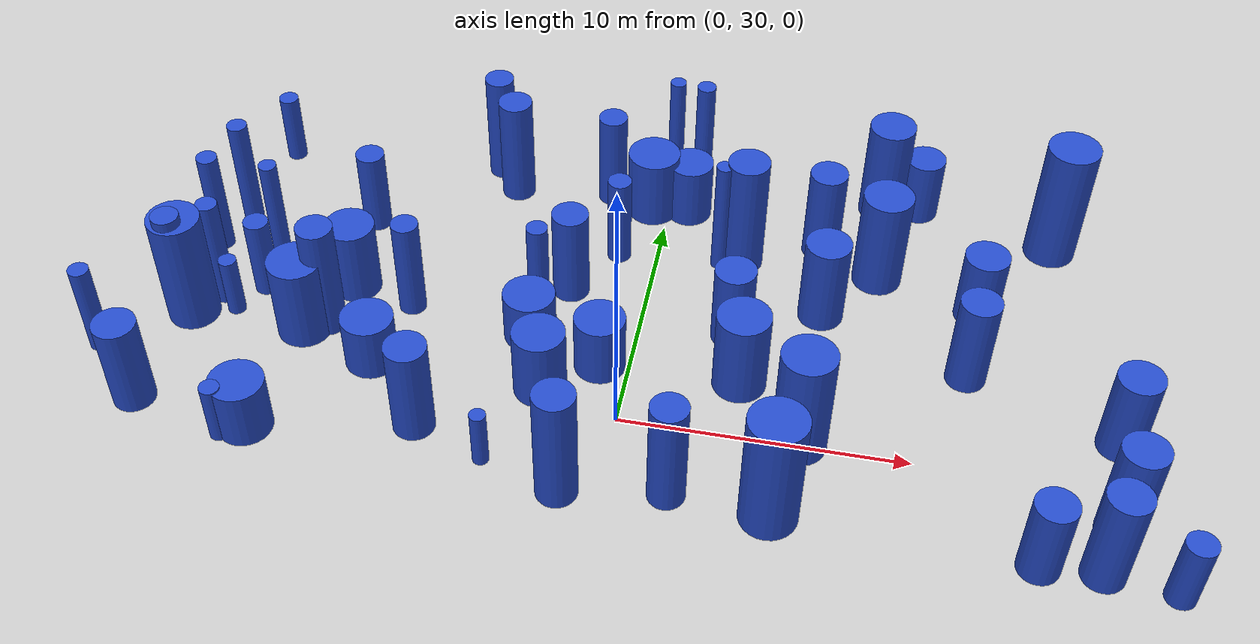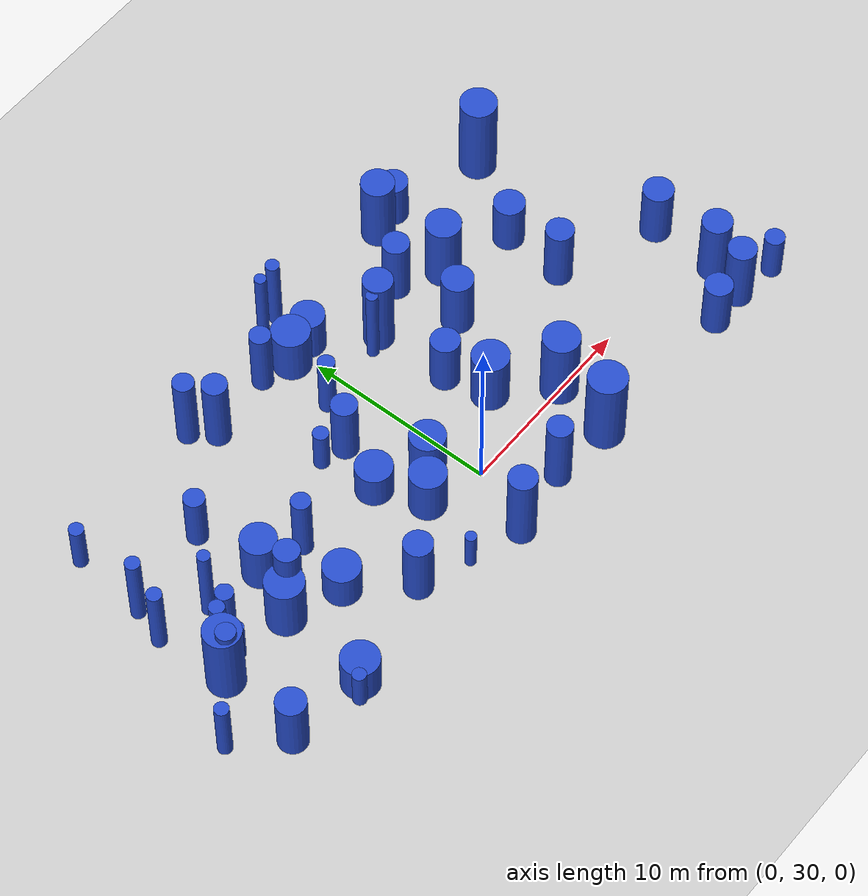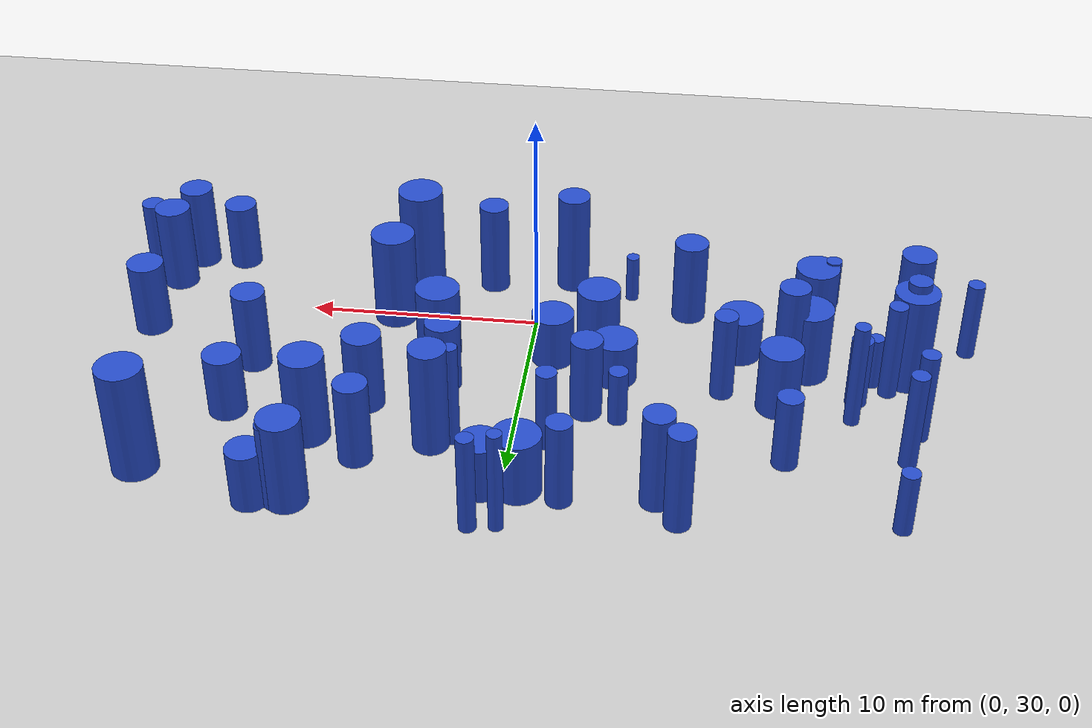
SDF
<sdf version="1.7">
 <world name="default">
  <model name="ground_plane">
   <static>1</static>
   <link name="link">
    <collision name="collision">
     <geometry><plane><normal>0 0 1</normal><size>100 100</size></plane></geometry>
     <surface>
      <contact><collide_bitmask>65535</collide_bitmask></contact>
      <friction><ode><mu>100</mu><mu2>50</mu2></ode></friction>
     </surface>
    </collision>
    <visual name="visual">
     <cast_shadows>0</cast_shadows>
     <geometry><plane><normal>0 0 1</normal><size>100 100</size></plane></geometry>
     <material>
      <script><uri>file://media/materials/scripts/gazebo.material</uri><name>Gazebo/Grey</name></script>
     </material>
    </visual>
   </link>
  </model>
  <model name="12">
   <static>0</static>
   <link name="link">
    <inertial>
     <mass>2</mass>
     <inertia><ixx>1.27619</ixx><ixy>0</ixy><ixz>0</ixz><iyy>1.27619</iyy><iyz>0</iyz><izz>0.925435</izz></inertia>
    </inertial>
    <collision name="collision">
     <geometry><cylinder><length>2.20927</length><radius>0.961995</radius></cylinder></geometry>
     <surface><contact><collide_without_contact>1</collide_without_contact></contact></surface>
    </collision>
    <visual name="visual">
     <geometry><cylinder><length>2.20927</length><radius>0.961995</radius></cylinder></geometry>
     <material>
      <script><uri>file://media/materials/scripts/gazebo.material</uri><name>Gazebo/Blue</name></script>
     </material>
    </visual>
    <gravity>0</gravity>
   </link>
   <pose>-12.255 27.3396 1.10463 0 -0 0</pose>
  </model>
  <model name="17">
   <static>0</static>
   <link name="link">
    <inertial>
     <mass>2</mass>
     <inertia><ixx>2.36762</ixx><ixy>0</ixy><ixz>0</ixz><iyy>2.36762</iyy><iyz>0</iyz><izz>0.56369</izz></inertia>
    </inertial>
    <collision name="collision">
     <geometry><cylinder><length>3.53761</length><radius>0.750793</radius></cylinder></geometry>
     <surface><contact><collide_without_contact>1</collide_without_contact></contact></surface>
    </collision>
    <visual name="visual">
     <geometry><cylinder><length>3.53761</length><radius>0.750793</radius></cylinder></geometry>
     <material>
      <script><uri>file://media/materials/scripts/gazebo.material</uri><name>Gazebo/Blue</name></script>
     </material>
    </visual>
    <gravity>0</gravity>
   </link>
   <pose>-16.4648 27.8446 1.7688 0 -0 0</pose>
  </model>
  <model name="19">
   <static>0</static>
   <link name="link">
    <inertial>
     <mass>2</mass>
     <inertia><ixx>1.67962</ixx><ixy>0</ixy><ixz>0</ixz><iyy>1.67962</iyy><iyz>0</iyz><izz>0.646256</izz></inertia>
    </inertial>
    <collision name="collision">
     <geometry><cylinder><length>2.85288</length><radius>0.803901</radius></cylinder></geometry>
     <surface><contact><collide_without_contact>1</collide_without_contact></contact></surface>
    </collision>
    <visual name="visual">
     <geometry><cylinder><length>2.85288</length><radius>0.803901</radius></cylinder></geometry>
     <material>
      <script><uri>file://media/materials/scripts/gazebo.material</uri><name>Gazebo/Blue</name></script>
     </material>
    </visual>
    <gravity>0</gravity>
   </link>
   <pose>11.8644 37.5981 1.42644 0 -0 0</pose>
  </model>
  <model name="31">
   <static>0</static>
   <link name="link">
    <inertial>
     <mass>2</mass>
     <inertia><ixx>4.54322</ixx><ixy>0</ixy><ixz>0</ixz><iyy>4.54322</iyy><iyz>0</iyz><izz>0.904882</izz></inertia>
    </inertial>
    <collision name="collision">
     <geometry><cylinder><length>4.95426</length><radius>0.951253</radius></cylinder></geometry>
     <surface><contact><collide_without_contact>1</collide_without_contact></contact></surface>
    </collision>
    <visual name="visual">
     <geometry><cylinder><length>4.95426</length><radius>0.951253</radius></cylinder></geometry>
     <material>
      <script><uri>file://media/materials/scripts/gazebo.material</uri><name>Gazebo/Blue</name></script>
     </material>
    </visual>
    <gravity>0</gravity>
   </link>
   <pose>14.4869 41.6001 2.47713 0 -0 0</pose>
  </model>
  <model name="38">
   <static>0</static>
   <link name="link">
    <inertial>
     <mass>2</mass>
     <inertia>
      <ixx>0.928398</ixx>
      <ixy>0</ixy>
      <ixz>0</ixz>
      <iyy>0.928398</iyy>
      <iyz>0</iyz>
      <izz>0.123325</izz>
     </inertia>
    </inertial>
    <collision name="collision">
     <geometry><cylinder><length>2.28044</length><radius>0.351177</radius></cylinder></geometry>
     <surface><contact><collide_without_contact>1</collide_without_contact></contact></surface>
    </collision>
    <visual name="visual">
     <geometry><cylinder><length>2.28044</length><radius>0.351177</radius></cylinder></geometry>
     <material>
      <script><uri>file://media/materials/scripts/gazebo.material</uri><name>Gazebo/Blue</name></script>
     </material>
    </visual>
    <gravity>0</gravity>
   </link>
   <pose>-12.9591 26.8189 1.14022 0 -0 0</pose>
  </model>
  <model name="43">
   <static>0</static>
   <link name="link">
    <inertial>
     <mass>2</mass>
     <inertia><ixx>1.11898</ixx><ixy>0</ixy><ixz>0</ixz><iyy>1.11898</iyy><iyz>0</iyz><izz>0.887933</izz></inertia>
    </inertial>
    <collision name="collision">
     <geometry><cylinder><length>2.01248</length><radius>0.942302</radius></cylinder></geometry>
     <surface><contact><collide_without_contact>1</collide_without_contact></contact></surface>
    </collision>
    <visual name="visual">
     <geometry><cylinder><length>2.01248</length><radius>0.942302</radius></cylinder></geometry>
     <material>
      <script><uri>file://media/materials/scripts/gazebo.material</uri><name>Gazebo/Blue</name></script>
     </material>
    </visual>
    <gravity>0</gravity>
   </link>
   <pose>-3.7665 33.4503 1.00624 0 -0 0</pose>
  </model>
  <model name="52">
   <static>0</static>
   <link name="link">
    <inertial>
     <mass>2</mass>
     <inertia>
      <ixx>3.67726</ixx>
      <ixy>0</ixy>
      <ixz>0</ixz>
      <iyy>3.67726</iyy>
      <iyz>0</iyz>
      <izz>0.0947076</izz>
     </inertia>
    </inertial>
    <collision name="collision">
     <geometry><cylinder><length>4.66685</length><radius>0.307746</radius></cylinder></geometry>
     <surface><contact><collide_without_contact>1</collide_without_contact></contact></surface>
    </collision>
    <visual name="visual">
     <geometry><cylinder><length>4.66685</length><radius>0.307746</radius></cylinder></geometry>
     <material>
      <script><uri>file://media/materials/scripts/gazebo.material</uri><name>Gazebo/Blue</name></script>
     </material>
    </visual>
    <gravity>0</gravity>
   </link>
   <pose>2.32397 38.4736 2.33342 0 -0 0</pose>
  </model>
  <model name="53">
   <static>0</static>
   <link name="link">
    <inertial>
     <mass>2</mass>
     <inertia><ixx>2.60897</ixx><ixy>0</ixy><ixz>0</ixz><iyy>2.60897</iyy><iyz>0</iyz><izz>0.17796</izz></inertia>
    </inertial>
    <collision name="collision">
     <geometry><cylinder><length>3.88844</length><radius>0.421853</radius></cylinder></geometry>
     <surface><contact><collide_without_contact>1</collide_without_contact></contact></surface>
    </collision>
    <visual name="visual">
     <geometry><cylinder><length>3.88844</length><radius>0.421853</radius></cylinder></geometry>
     <material>
      <script><uri>file://media/materials/scripts/gazebo.material</uri><name>Gazebo/Blue</name></script>
     </material>
    </visual>
    <gravity>0</gravity>
   </link>
   <pose>8.51804 43.0558 1.94422 0 -0 0</pose>
  </model>
  <model name="61">
   <static>0</static>
   <link name="link">
    <inertial>
     <mass>2</mass>
     <inertia><ixx>2.9263</ixx><ixy>0</ixy><ixz>0</ixz><iyy>2.9263</iyy><iyz>0</iyz><izz>0.149705</izz></inertia>
    </inertial>
    <collision name="collision">
     <geometry><cylinder><length>4.13626</length><radius>0.386917</radius></cylinder></geometry>
     <surface><contact><collide_without_contact>1</collide_without_contact></contact></surface>
    </collision>
    <visual name="visual">
     <geometry><cylinder><length>4.13626</length><radius>0.386917</radius></cylinder></geometry>
     <material>
      <script><uri>file://media/materials/scripts/gazebo.material</uri><name>Gazebo/Blue</name></script>
     </material>
    </visual>
    <gravity>0</gravity>
   </link>
   <pose>-16.3222 35.9641 2.06813 0 -0 0</pose>
  </model>
  <model name="65">
   <static>0</static>
   <link name="link">
    <inertial>
     <mass>2</mass>
     <inertia><ixx>4.07214</ixx><ixy>0</ixy><ixz>0</ixz><iyy>4.07214</iyy><iyz>0</iyz><izz>0.583035</izz></inertia>
    </inertial>
    <collision name="collision">
     <geometry><cylinder><length>4.76274</length><radius>0.763567</radius></cylinder></geometry>
     <surface><contact><collide_without_contact>1</collide_without_contact></contact></surface>
    </collision>
    <visual name="visual">
     <geometry><cylinder><length>4.76274</length><radius>0.763567</radius></cylinder></geometry>
     <material>
      <script><uri>file://media/materials/scripts/gazebo.material</uri><name>Gazebo/Blue</name></script>
     </material>
    </visual>
    <gravity>0</gravity>
   </link>
   <pose>3.15389 38.7817 2.38137 0 -0 0</pose>
  </model>
  <model name="68">
   <static>0</static>
   <link name="link">
    <inertial>
     <mass>2</mass>
     <inertia><ixx>2.56035</ixx><ixy>0</ixy><ixz>0</ixz><iyy>2.56035</iyy><iyz>0</iyz><izz>0.482898</izz></inertia>
    </inertial>
    <collision name="collision">
     <geometry><cylinder><length>3.73007</length><radius>0.694909</radius></cylinder></geometry>
     <surface><contact><collide_without_contact>1</collide_without_contact></contact></surface>
    </collision>
    <visual name="visual">
     <geometry><cylinder><length>3.73007</length><radius>0.694909</radius></cylinder></geometry>
     <material>
      <script><uri>file://media/materials/scripts/gazebo.material</uri><name>Gazebo/Blue</name></script>
     </material>
    </visual>
    <gravity>0</gravity>
   </link>
   <pose>5.99 39.9901 1.86504 0 -0 0</pose>
  </model>
  <model name="84">
   <static>0</static>
   <link name="link">
    <inertial>
     <mass>2</mass>
     <inertia><ixx>1.96542</ixx><ixy>0</ixy><ixz>0</ixz><iyy>1.96542</iyy><iyz>0</iyz><izz>0.55372</izz></inertia>
    </inertial>
    <collision name="collision">
     <geometry><cylinder><length>3.18298</length><radius>0.744123</radius></cylinder></geometry>
     <surface><contact><collide_without_contact>1</collide_without_contact></contact></surface>
    </collision>
    <visual name="visual">
     <geometry><cylinder><length>3.18298</length><radius>0.744123</radius></cylinder></geometry>
     <material>
      <script><uri>file://media/materials/scripts/gazebo.material</uri><name>Gazebo/Blue</name></script>
     </material>
    </visual>
    <gravity>0</gravity>
   </link>
   <pose>3.30155 34.7995 1.59149 0 -0 0</pose>
  </model>
  <model name="87">
   <static>0</static>
   <link name="link">
    <inertial>
     <mass>2</mass>
     <inertia><ixx>2.24731</ixx><ixy>0</ixy><ixz>0</ixz><iyy>2.24731</iyy><iyz>0</iyz><izz>0.904156</izz></inertia>
    </inertial>
    <collision name="collision">
     <geometry><cylinder><length>3.28198</length><radius>0.950871</radius></cylinder></geometry>
     <surface><contact><collide_without_contact>1</collide_without_contact></contact></surface>
    </collision>
    <visual name="visual">
     <geometry><cylinder><length>3.28198</length><radius>0.950871</radius></cylinder></geometry>
     <material>
      <script><uri>file://media/materials/scripts/gazebo.material</uri><name>Gazebo/Blue</name></script>
     </material>
    </visual>
    <gravity>0</gravity>
   </link>
   <pose>3.89152 32.5213 1.64099 0 -0 0</pose>
  </model>
  <model name="89">
   <static>0</static>
   <link name="link">
    <inertial>
     <mass>2</mass>
     <inertia><ixx>3.86103</ixx><ixy>0</ixy><ixz>0</ixz><iyy>3.86103</iyy><iyz>0</iyz><izz>0.517319</izz></inertia>
    </inertial>
    <collision name="collision">
     <geometry><cylinder><length>4.64911</length><radius>0.719249</radius></cylinder></geometry>
     <surface><contact><collide_without_contact>1</collide_without_contact></contact></surface>
    </collision>
    <visual name="visual">
     <geometry><cylinder><length>4.64911</length><radius>0.719249</radius></cylinder></geometry>
     <material>
      <script><uri>file://media/materials/scripts/gazebo.material</uri><name>Gazebo/Blue</name></script>
     </material>
    </visual>
    <gravity>0</gravity>
   </link>
   <pose>-1.29408 26.5943 2.32455 0 -0 0</pose>
  </model>
  <model name="112">
   <static>0</static>
   <link name="link">
    <inertial>
     <mass>2</mass>
     <inertia><ixx>2.22524</ixx><ixy>0</ixy><ixz>0</ixz><iyy>2.22524</iyy><iyz>0</iyz><izz>0.133987</izz></inertia>
    </inertial>
    <collision name="collision">
     <geometry><cylinder><length>3.59854</length><radius>0.366043</radius></cylinder></geometry>
     <surface><contact><collide_without_contact>1</collide_without_contact></contact></surface>
    </collision>
    <visual name="visual">
     <geometry><cylinder><length>3.59854</length><radius>0.366043</radius></cylinder></geometry>
     <material>
      <script><uri>file://media/materials/scripts/gazebo.material</uri><name>Gazebo/Blue</name></script>
     </material>
    </visual>
    <gravity>0</gravity>
   </link>
   <pose>-18.6879 29.9858 1.79927 0 -0 0</pose>
  </model>
  <model name="115">
   <static>0</static>
   <link name="link">
    <inertial>
     <mass>2</mass>
     <inertia><ixx>3.11202</ixx><ixy>0</ixy><ixz>0</ixz><iyy>3.11202</iyy><iyz>0</iyz><izz>0.73503</izz></inertia>
    </inertial>
    <collision name="collision">
     <geometry><cylinder><length>4.05796</length><radius>0.857339</radius></cylinder></geometry>
     <surface><contact><collide_without_contact>1</collide_without_contact></contact></surface>
    </collision>
    <visual name="visual">
     <geometry><cylinder><length>4.05796</length><radius>0.857339</radius></cylinder></geometry>
     <material>
      <script><uri>file://media/materials/scripts/gazebo.material</uri><name>Gazebo/Blue</name></script>
     </material>
    </visual>
    <gravity>0</gravity>
   </link>
   <pose>8.07554 42.8063 2.02898 0 -0 0</pose>
  </model>
  <model name="117">
   <static>0</static>
   <link name="link">
    <inertial>
     <mass>2</mass>
     <inertia><ixx>2.7452</ixx><ixy>0</ixy><ixz>0</ixz><iyy>2.7452</iyy><iyz>0</iyz><izz>0.535852</izz></inertia>
    </inertial>
    <collision name="collision">
     <geometry><cylinder><length>3.85534</length><radius>0.732019</radius></cylinder></geometry>
     <surface><contact><collide_without_contact>1</collide_without_contact></contact></surface>
    </collision>
    <visual name="visual">
     <geometry><cylinder><length>3.85534</length><radius>0.732019</radius></cylinder></geometry>
     <material>
      <script><uri>file://media/materials/scripts/gazebo.material</uri><name>Gazebo/Blue</name></script>
     </material>
    </visual>
    <gravity>0</gravity>
   </link>
   <pose>16.0638 26.6663 1.92767 0 -0 0</pose>
  </model>
  <model name="123">
   <static>0</static>
   <link name="link">
    <inertial>
     <mass>2</mass>
     <inertia><ixx>3.08274</ixx><ixy>0</ixy><ixz>0</ixz><iyy>3.08274</iyy><iyz>0</iyz><izz>0.826748</izz></inertia>
    </inertial>
    <collision name="collision">
     <geometry><cylinder><length>4.00202</length><radius>0.909257</radius></cylinder></geometry>
     <surface><contact><collide_without_contact>1</collide_without_contact></contact></surface>
    </collision>
    <visual name="visual">
     <geometry><cylinder><length>4.00202</length><radius>0.909257</radius></cylinder></geometry>
     <material>
      <script><uri>file://media/materials/scripts/gazebo.material</uri><name>Gazebo/Blue</name></script>
     </material>
    </visual>
    <gravity>0</gravity>
   </link>
   <pose>8.19066 38.7974 2.00101 0 -0 0</pose>
  </model>
  <model name="135">
   <static>0</static>
   <link name="link">
    <inertial>
     <mass>2</mass>
     <inertia><ixx>2.66442</ixx><ixy>0</ixy><ixz>0</ixz><iyy>2.66442</iyy><iyz>0</iyz><izz>0.539051</izz></inertia>
    </inertial>
    <collision name="collision">
     <geometry><cylinder><length>3.7907</length><radius>0.734201</radius></cylinder></geometry>
     <surface><contact><collide_without_contact>1</collide_without_contact></contact></surface>
    </collision>
    <visual name="visual">
     <geometry><cylinder><length>3.7907</length><radius>0.734201</radius></cylinder></geometry>
     <material>
      <script><uri>file://media/materials/scripts/gazebo.material</uri><name>Gazebo/Blue</name></script>
     </material>
    </visual>
    <gravity>0</gravity>
   </link>
   <pose>-6.64923 28.4701 1.89535 0 -0 0</pose>
  </model>
  <model name="151">
   <static>0</static>
   <link name="link">
    <inertial>
     <mass>2</mass>
     <inertia><ixx>2.48162</ixx><ixy>0</ixy><ixz>0</ixz><iyy>2.48162</iyy><iyz>0</iyz><izz>0.443338</izz></inertia>
    </inertial>
    <collision name="collision">
     <geometry><cylinder><length>3.68235</length><radius>0.665836</radius></cylinder></geometry>
     <surface><contact><collide_without_contact>1</collide_without_contact></contact></surface>
    </collision>
    <visual name="visual">
     <geometry><cylinder><length>3.68235</length><radius>0.665836</radius></cylinder></geometry>
     <material>
      <script><uri>file://media/materials/scripts/gazebo.material</uri><name>Gazebo/Blue</name></script>
     </material>
    </visual>
    <gravity>0</gravity>
   </link>
   <pose>-2.80751 35.995 1.84118 0 -0 0</pose>
  </model>
  <model name="164">
   <static>0</static>
   <link name="link">
    <inertial>
     <mass>2</mass>
     <inertia><ixx>1.12381</ixx><ixy>0</ixy><ixz>0</ixz><iyy>1.12381</iyy><iyz>0</iyz><izz>0.161791</izz></inertia>
    </inertial>
    <collision name="collision">
     <geometry><cylinder><length>2.5015</length><radius>0.402233</radius></cylinder></geometry>
     <surface><contact><collide_without_contact>1</collide_without_contact></contact></surface>
    </collision>
    <visual name="visual">
     <geometry><cylinder><length>2.5015</length><radius>0.402233</radius></cylinder></geometry>
     <material>
      <script><uri>file://media/materials/scripts/gazebo.material</uri><name>Gazebo/Blue</name></script>
     </material>
    </visual>
    <gravity>0</gravity>
   </link>
   <pose>-4.13851 36.3513 1.25075 0 -0 0</pose>
  </model>
  <model name="167">
   <static>0</static>
   <link name="link">
    <inertial>
     <mass>2</mass>
     <inertia><ixx>3.80657</ixx><ixy>0</ixy><ixz>0</ixz><iyy>3.80657</iyy><iyz>0</iyz><izz>0.106043</izz></inertia>
    </inertial>
    <collision name="collision">
     <geometry><cylinder><length>4.74566</length><radius>0.325643</radius></cylinder></geometry>
     <surface><contact><collide_without_contact>1</collide_without_contact></contact></surface>
    </collision>
    <visual name="visual">
     <geometry><cylinder><length>4.74566</length><radius>0.325643</radius></cylinder></geometry>
     <material>
      <script><uri>file://media/materials/scripts/gazebo.material</uri><name>Gazebo/Blue</name></script>
     </material>
    </visual>
    <gravity>0</gravity>
   </link>
   <pose>-13.6499 35.2804 2.37283 0 -0 0</pose>
  </model>
  <model name="169">
   <static>0</static>
   <link name="link">
    <inertial>
     <mass>2</mass>
     <inertia><ixx>1.68061</ixx><ixy>0</ixy><ixz>0</ixz><iyy>1.68061</iyy><iyz>0</iyz><izz>0.872903</izz></inertia>
    </inertial>
    <collision name="collision">
     <geometry><cylinder><length>2.73221</length><radius>0.934293</radius></cylinder></geometry>
     <surface><contact><collide_without_contact>1</collide_without_contact></contact></surface>
    </collision>
    <visual name="visual">
     <geometry><cylinder><length>2.73221</length><radius>0.934293</radius></cylinder></geometry>
     <material>
      <script><uri>file://media/materials/scripts/gazebo.material</uri><name>Gazebo/Blue</name></script>
     </material>
    </visual>
    <gravity>0</gravity>
   </link>
   <pose>-2.83617 30.9548 1.3661 0 -0 0</pose>
  </model>
  <model name="172">
   <static>0</static>
   <link name="link">
    <inertial>
     <mass>2</mass>
     <inertia><ixx>1.40764</ixx><ixy>0</ixy><ixz>0</ixz><iyy>1.40764</iyy><iyz>0</iyz><izz>0.557029</izz></inertia>
    </inertial>
    <collision name="collision">
     <geometry><cylinder><length>2.60284</length><radius>0.746344</radius></cylinder></geometry>
     <surface><contact><collide_without_contact>1</collide_without_contact></contact></surface>
    </collision>
    <visual name="visual">
     <geometry><cylinder><length>2.60284</length><radius>0.746344</radius></cylinder></geometry>
     <material>
      <script><uri>file://media/materials/scripts/gazebo.material</uri><name>Gazebo/Blue</name></script>
     </material>
    </visual>
    <gravity>0</gravity>
   </link>
   <pose>9.48545 42.9808 1.30142 0 -0 0</pose>
  </model>
  <model name="176">
   <static>0</static>
   <link name="link">
    <inertial>
     <mass>2</mass>
     <inertia><ixx>3.34478</ixx><ixy>0</ixy><ixz>0</ixz><iyy>3.34478</iyy><iyz>0</iyz><izz>0.153505</izz></inertia>
    </inertial>
    <collision name="collision">
     <geometry><cylinder><length>4.42811</length><radius>0.391798</radius></cylinder></geometry>
     <surface><contact><collide_without_contact>1</collide_without_contact></contact></surface>
    </collision>
    <visual name="visual">
     <geometry><cylinder><length>4.42811</length><radius>0.391798</radius></cylinder></geometry>
     <material>
      <script><uri>file://media/materials/scripts/gazebo.material</uri><name>Gazebo/Blue</name></script>
     </material>
    </visual>
    <gravity>0</gravity>
   </link>
   <pose>-15.1905 33.2 2.21406 0 -0 0</pose>
  </model>
  <model name="205">
   <static>0</static>
   <link name="link">
    <inertial>
     <mass>2</mass>
     <inertia><ixx>2.73787</ixx><ixy>0</ixy><ixz>0</ixz><iyy>2.73787</iyy><iyz>0</iyz><izz>0.243037</izz></inertia>
    </inertial>
    <collision name="collision">
     <geometry><cylinder><length>3.96209</length><radius>0.492987</radius></cylinder></geometry>
     <surface><contact><collide_without_contact>1</collide_without_contact></contact></surface>
    </collision>
    <visual name="visual">
     <geometry><cylinder><length>3.96209</length><radius>0.492987</radius></cylinder></geometry>
     <material>
      <script><uri>file://media/materials/scripts/gazebo.material</uri><name>Gazebo/Blue</name></script>
     </material>
    </visual>
    <gravity>0</gravity>
   </link>
   <pose>-8.30216 34.0443 1.98104 0 -0 0</pose>
  </model>
  <model name="207">
   <static>0</static>
   <link name="link">
    <inertial>
     <mass>2</mass>
     <inertia><ixx>1.32975</ixx><ixy>0</ixy><ixz>0</ixz><iyy>1.32975</iyy><iyz>0</iyz><izz>0.829033</izz></inertia>
    </inertial>
    <collision name="collision">
     <geometry><cylinder><length>2.34338</length><radius>0.910512</radius></cylinder></geometry>
     <surface><contact><collide_without_contact>1</collide_without_contact></contact></surface>
    </collision>
    <visual name="visual">
     <geometry><cylinder><length>2.34338</length><radius>0.910512</radius></cylinder></geometry>
     <material>
      <script><uri>file://media/materials/scripts/gazebo.material</uri><name>Gazebo/Blue</name></script>
     </material>
    </visual>
    <gravity>0</gravity>
   </link>
   <pose>-1.02232 32.4205 1.17169 0 -0 0</pose>
  </model>
  <model name="214">
   <static>0</static>
   <link name="link">
    <inertial>
     <mass>2</mass>
     <inertia>
      <ixx>0.838629</ixx>
      <ixy>0</ixy>
      <ixz>0</ixz>
      <iyy>0.838629</iyy>
      <iyz>0</iyz>
      <izz>0.0814457</izz>
     </inertia>
    </inertial>
    <collision name="collision">
     <geometry><cylinder><length>2.18802</length><radius>0.285387</radius></cylinder></geometry>
     <surface><contact><collide_without_contact>1</collide_without_contact></contact></surface>
    </collision>
    <visual name="visual">
     <geometry><cylinder><length>2.18802</length><radius>0.285387</radius></cylinder></geometry>
     <material>
      <script><uri>file://media/materials/scripts/gazebo.material</uri><name>Gazebo/Blue</name></script>
     </material>
    </visual>
    <gravity>0</gravity>
   </link>
   <pose>-4.05803 27.4367 1.09401 0 -0 0</pose>
  </model>
  <model name="216">
   <static>0</static>
   <link name="link">
    <inertial>
     <mass>2</mass>
     <inertia><ixx>2.85535</ixx><ixy>0</ixy><ixz>0</ixz><iyy>2.85535</iyy><iyz>0</iyz><izz>0.60102</izz></inertia>
    </inertial>
    <collision name="collision">
     <geometry><cylinder><length>3.91523</length><radius>0.775255</radius></cylinder></geometry>
     <surface><contact><collide_without_contact>1</collide_without_contact></contact></surface>
    </collision>
    <visual name="visual">
     <geometry><cylinder><length>3.91523</length><radius>0.775255</radius></cylinder></geometry>
     <material>
      <script><uri>file://media/materials/scripts/gazebo.material</uri><name>Gazebo/Blue</name></script>
     </material>
    </visual>
    <gravity>0</gravity>
   </link>
   <pose>16.5954 28.5472 1.95761 0 -0 0</pose>
  </model>
  <model name="234">
   <static>0</static>
   <link name="link">
    <inertial>
     <mass>2</mass>
     <inertia><ixx>1.98978</ixx><ixy>0</ixy><ixz>0</ixz><iyy>1.98978</iyy><iyz>0</iyz><izz>0.285191</izz></inertia>
    </inertial>
    <collision name="collision">
     <geometry><cylinder><length>3.32913</length><radius>0.534033</radius></cylinder></geometry>
     <surface><contact><collide_without_contact>1</collide_without_contact></contact></surface>
    </collision>
    <visual name="visual">
     <geometry><cylinder><length>3.32913</length><radius>0.534033</radius></cylinder></geometry>
     <material>
      <script><uri>file://media/materials/scripts/gazebo.material</uri><name>Gazebo/Blue</name></script>
     </material>
    </visual>
    <gravity>0</gravity>
   </link>
   <pose>-10.9383 38.277 1.66456 0 -0 0</pose>
  </model>
  <model name="235">
   <static>0</static>
   <link name="link">
    <inertial>
     <mass>2</mass>
     <inertia><ixx>1.8841</ixx><ixy>0</ixy><ixz>0</ixz><iyy>1.8841</iyy><iyz>0</iyz><izz>0.813748</izz></inertia>
    </inertial>
    <collision name="collision">
     <geometry><cylinder><length>2.97713</length><radius>0.90208</radius></cylinder></geometry>
     <surface><contact><collide_without_contact>1</collide_without_contact></contact></surface>
    </collision>
    <visual name="visual">
     <geometry><cylinder><length>2.97713</length><radius>0.90208</radius></cylinder></geometry>
     <material>
      <script><uri>file://media/materials/scripts/gazebo.material</uri><name>Gazebo/Blue</name></script>
     </material>
    </visual>
    <gravity>0</gravity>
   </link>
   <pose>-10.6243 34.684 1.48857 0 -0 0</pose>
  </model>
  <model name="237">
   <static>0</static>
   <link name="link">
    <inertial>
     <mass>2</mass>
     <inertia><ixx>1.7914</ixx><ixy>0</ixy><ixz>0</ixz><iyy>1.7914</iyy><iyz>0</iyz><izz>0.206245</izz></inertia>
    </inertial>
    <collision name="collision">
     <geometry><cylinder><length>3.18272</length><radius>0.454142</radius></cylinder></geometry>
     <surface><contact><collide_without_contact>1</collide_without_contact></contact></surface>
    </collision>
    <visual name="visual">
     <geometry><cylinder><length>3.18272</length><radius>0.454142</radius></cylinder></geometry>
     <material>
      <script><uri>file://media/materials/scripts/gazebo.material</uri><name>Gazebo/Blue</name></script>
     </material>
    </visual>
    <gravity>0</gravity>
   </link>
   <pose>-13.8589 33.968 1.59136 0 -0 0</pose>
  </model>
  <model name="253">
   <static>0</static>
   <link name="link">
    <inertial>
     <mass>2</mass>
     <inertia><ixx>1.30809</ixx><ixy>0</ixy><ixz>0</ixz><iyy>1.30809</iyy><iyz>0</iyz><izz>0.262137</izz></inertia>
    </inertial>
    <collision name="collision">
     <geometry><cylinder><length>2.65746</length><radius>0.511993</radius></cylinder></geometry>
     <surface><contact><collide_without_contact>1</collide_without_contact></contact></surface>
    </collision>
    <visual name="visual">
     <geometry><cylinder><length>2.65746</length><radius>0.511993</radius></cylinder></geometry>
     <material>
      <script><uri>file://media/materials/scripts/gazebo.material</uri><name>Gazebo/Blue</name></script>
     </material>
    </visual>
    <gravity>0</gravity>
   </link>
   <pose>18.377 26.2917 1.32873 0 -0 0</pose>
  </model>
  <model name="255">
   <static>0</static>
   <link name="link">
    <inertial>
     <mass>2</mass>
     <inertia><ixx>4.07372</ixx><ixy>0</ixy><ixz>0</ixz><iyy>4.07372</iyy><iyz>0</iyz><izz>0.980066</izz></inertia>
    </inertial>
    <collision name="collision">
     <geometry><cylinder><length>4.63704</length><radius>0.989983</radius></cylinder></geometry>
     <surface><contact><collide_without_contact>1</collide_without_contact></contact></surface>
    </collision>
    <visual name="visual">
     <geometry><cylinder><length>4.63704</length><radius>0.989983</radius></cylinder></geometry>
     <material>
      <script><uri>file://media/materials/scripts/gazebo.material</uri><name>Gazebo/Blue</name></script>
     </material>
    </visual>
    <gravity>0</gravity>
   </link>
   <pose>5.58519 26.9135 2.31852 0 -0 0</pose>
  </model>
  <model name="286">
   <static>0</static>
   <link name="link">
    <inertial>
     <mass>2</mass>
     <inertia><ixx>1.85627</ixx><ixy>0</ixy><ixz>0</ixz><iyy>1.85627</iyy><iyz>0</iyz><izz>0.506401</izz></inertia>
    </inertial>
    <collision name="collision">
     <geometry><cylinder><length>3.10136</length><radius>0.711618</radius></cylinder></geometry>
     <surface><contact><collide_without_contact>1</collide_without_contact></contact></surface>
    </collision>
    <visual name="visual">
     <geometry><cylinder><length>3.10136</length><radius>0.711618</radius></cylinder></geometry>
     <material>
      <script><uri>file://media/materials/scripts/gazebo.material</uri><name>Gazebo/Blue</name></script>
     </material>
    </visual>
    <gravity>0</gravity>
   </link>
   <pose>14.0919 26.5652 1.55068 0 -0 0</pose>
  </model>
  <model name="294">
   <static>0</static>
   <link name="link">
    <inertial>
     <mass>2</mass>
     <inertia><ixx>3.19975</ixx><ixy>0</ixy><ixz>0</ixz><iyy>3.19975</iyy><iyz>0</iyz><izz>0.419793</izz></inertia>
    </inertial>
    <collision name="collision">
     <geometry><cylinder><length>4.23546</length><radius>0.647914</radius></cylinder></geometry>
     <surface><contact><collide_without_contact>1</collide_without_contact></contact></surface>
    </collision>
    <visual name="visual">
     <geometry><cylinder><length>4.23546</length><radius>0.647914</radius></cylinder></geometry>
     <material>
      <script><uri>file://media/materials/scripts/gazebo.material</uri><name>Gazebo/Blue</name></script>
     </material>
    </visual>
    <gravity>0</gravity>
   </link>
   <pose>2.22908 27.1371 2.11773 0 -0 0</pose>
  </model>
  <model name="303">
   <static>0</static>
   <link name="link">
    <inertial>
     <mass>2</mass>
     <inertia><ixx>3.72674</ixx><ixy>0</ixy><ixz>0</ixz><iyy>3.72674</iyy><iyz>0</iyz><izz>0.422869</izz></inertia>
    </inertial>
    <collision name="collision">
     <geometry><cylinder><length>4.59258</length><radius>0.650284</radius></cylinder></geometry>
     <surface><contact><collide_without_contact>1</collide_without_contact></contact></surface>
    </collision>
    <visual name="visual">
     <geometry><cylinder><length>4.59258</length><radius>0.650284</radius></cylinder></geometry>
     <material>
      <script><uri>file://media/materials/scripts/gazebo.material</uri><name>Gazebo/Blue</name></script>
     </material>
    </visual>
    <gravity>0</gravity>
   </link>
   <pose>-11.0334 32.5859 2.29629 0 -0 0</pose>
  </model>
  <model name="304">
   <static>0</static>
   <link name="link">
    <inertial>
     <mass>2</mass>
     <inertia><ixx>4.04615</ixx><ixy>0</ixy><ixz>0</ixz><iyy>4.04615</iyy><iyz>0</iyz><izz>0.242868</izz></inertia>
    </inertial>
    <collision name="collision">
     <geometry><cylinder><length>4.85266</length><radius>0.492816</radius></cylinder></geometry>
     <surface><contact><collide_without_contact>1</collide_without_contact></contact></surface>
    </collision>
    <visual name="visual">
     <geometry><cylinder><length>4.85266</length><radius>0.492816</radius></cylinder></geometry>
     <material>
      <script><uri>file://media/materials/scripts/gazebo.material</uri><name>Gazebo/Blue</name></script>
     </material>
    </visual>
    <gravity>0</gravity>
   </link>
   <pose>-16.0959 31.8831 2.42633 0 -0 0</pose>
  </model>
  <model name="306">
   <static>0</static>
   <link name="link">
    <inertial>
     <mass>2</mass>
     <inertia><ixx>3.21997</ixx><ixy>0</ixy><ixz>0</ixz><iyy>3.21997</iyy><iyz>0</iyz><izz>0.125411</izz></inertia>
    </inertial>
    <collision name="collision">
     <geometry><cylinder><length>4.35243</length><radius>0.354134</radius></cylinder></geometry>
     <surface><contact><collide_without_contact>1</collide_without_contact></contact></surface>
    </collision>
    <visual name="visual">
     <geometry><cylinder><length>4.35243</length><radius>0.354134</radius></cylinder></geometry>
     <material>
      <script><uri>file://media/materials/scripts/gazebo.material</uri><name>Gazebo/Blue</name></script>
     </material>
    </visual>
    <gravity>0</gravity>
   </link>
   <pose>0.930855 43.477 2.17621 0 -0 0</pose>
  </model>
  <model name="309">
   <static>0</static>
   <link name="link">
    <inertial>
     <mass>2</mass>
     <inertia><ixx>3.56719</ixx><ixy>0</ixy><ixz>0</ixz><iyy>3.56719</iyy><iyz>0</iyz><izz>0.891388</izz></inertia>
    </inertial>
    <collision name="collision">
     <geometry><cylinder><length>4.3277</length><radius>0.944133</radius></cylinder></geometry>
     <surface><contact><collide_without_contact>1</collide_without_contact></contact></surface>
    </collision>
    <visual name="visual">
     <geometry><cylinder><length>4.3277</length><radius>0.944133</radius></cylinder></geometry>
     <material>
      <script><uri>file://media/materials/scripts/gazebo.material</uri><name>Gazebo/Blue</name></script>
     </material>
    </visual>
    <gravity>0</gravity>
   </link>
   <pose>6.22881 30.1217 2.16385 0 -0 0</pose>
  </model>
  <model name="323">
   <static>0</static>
   <link name="link">
    <inertial>
     <mass>2</mass>
     <inertia>
      <ixx>0.999716</ixx>
      <ixy>0</ixy>
      <ixz>0</ixz>
      <iyy>0.999716</iyy>
      <iyz>0</iyz>
      <izz>0.106174</izz>
     </inertia>
    </inertial>
    <collision name="collision">
     <geometry><cylinder><length>2.38323</length><radius>0.325843</radius></cylinder></geometry>
     <surface><contact><collide_without_contact>1</collide_without_contact></contact></surface>
    </collision>
    <visual name="visual">
     <geometry><cylinder><length>2.38323</length><radius>0.325843</radius></cylinder></geometry>
     <material>
      <script><uri>file://media/materials/scripts/gazebo.material</uri><name>Gazebo/Blue</name></script>
     </material>
    </visual>
    <gravity>0</gravity>
   </link>
   <pose>-14.5587 32.6498 1.19161 0 -0 0</pose>
  </model>
  <model name="329">
   <static>0</static>
   <link name="link">
    <inertial>
     <mass>2</mass>
     <inertia><ixx>3.45398</ixx><ixy>0</ixy><ixz>0</ixz><iyy>3.45398</iyy><iyz>0</iyz><izz>0.297511</izz></inertia>
    </inertial>
    <collision name="collision">
     <geometry><cylinder><length>4.45324</length><radius>0.545446</radius></cylinder></geometry>
     <surface><contact><collide_without_contact>1</collide_without_contact></contact></surface>
    </collision>
    <visual name="visual">
     <geometry><cylinder><length>4.45324</length><radius>0.545446</radius></cylinder></geometry>
     <material>
      <script><uri>file://media/materials/scripts/gazebo.material</uri><name>Gazebo/Blue</name></script>
     </material>
    </visual>
    <gravity>0</gravity>
   </link>
   <pose>-6.91642 42.3239 2.22662 0 -0 0</pose>
  </model>
  <model name="331">
   <static>0</static>
   <link name="link">
    <inertial>
     <mass>2</mass>
     <inertia><ixx>1.19481</ixx><ixy>0</ixy><ixz>0</ixz><iyy>1.19481</iyy><iyz>0</iyz><izz>0.891115</izz></inertia>
    </inertial>
    <collision name="collision">
     <geometry><cylinder><length>2.12026</length><radius>0.943989</radius></cylinder></geometry>
     <surface><contact><collide_without_contact>1</collide_without_contact></contact></surface>
    </collision>
    <visual name="visual">
     <geometry><cylinder><length>2.12026</length><radius>0.943989</radius></cylinder></geometry>
     <material>
      <script><uri>file://media/materials/scripts/gazebo.material</uri><name>Gazebo/Blue</name></script>
     </material>
    </visual>
    <gravity>0</gravity>
   </link>
   <pose>-8.96024 31.1268 1.06013 0 -0 0</pose>
  </model>
  <model name="337">
   <static>0</static>
   <link name="link">
    <inertial>
     <mass>2</mass>
     <inertia>
      <ixx>3.45388</ixx>
      <ixy>0</ixy>
      <ixz>0</ixz>
      <iyy>3.45388</iyy>
      <iyz>0</iyz>
      <izz>0.0903584</izz>
     </inertia>
    </inertial>
    <collision name="collision">
     <geometry><cylinder><length>4.52241</length><radius>0.300597</radius></cylinder></geometry>
     <surface><contact><collide_without_contact>1</collide_without_contact></contact></surface>
    </collision>
    <visual name="visual">
     <geometry><cylinder><length>4.52241</length><radius>0.300597</radius></cylinder></geometry>
     <material>
      <script><uri>file://media/materials/scripts/gazebo.material</uri><name>Gazebo/Blue</name></script>
     </material>
    </visual>
    <gravity>0</gravity>
   </link>
   <pose>-0.138931 43.3214 2.26121 0 -0 0</pose>
  </model>
  <model name="341">
   <static>0</static>
   <link name="link">
    <inertial>
     <mass>2</mass>
     <inertia><ixx>2.27249</ixx><ixy>0</ixy><ixz>0</ixz><iyy>2.27249</iyy><iyz>0</iyz><izz>0.190922</izz></inertia>
    </inertial>
    <collision name="collision">
     <geometry><cylinder><length>3.61417</length><radius>0.436947</radius></cylinder></geometry>
     <surface><contact><collide_without_contact>1</collide_without_contact></contact></surface>
    </collision>
    <visual name="visual">
     <geometry><cylinder><length>3.61417</length><radius>0.436947</radius></cylinder></geometry>
     <material>
      <script><uri>file://media/materials/scripts/gazebo.material</uri><name>Gazebo/Blue</name></script>
     </material>
    </visual>
    <gravity>0</gravity>
   </link>
   <pose>-1.43481 38.2156 1.80708 0 -0 0</pose>
  </model>
  <model name="346">
   <static>0</static>
   <link name="link">
    <inertial>
     <mass>2</mass>
     <inertia><ixx>2.14517</ixx><ixy>0</ixy><ixz>0</ixz><iyy>2.14517</iyy><iyz>0</iyz><izz>0.62147</izz></inertia>
    </inertial>
    <collision name="collision">
     <geometry><cylinder><length>3.31762</length><radius>0.788334</radius></cylinder></geometry>
     <surface><contact><collide_without_contact>1</collide_without_contact></contact></surface>
    </collision>
    <visual name="visual">
     <geometry><cylinder><length>3.31762</length><radius>0.788334</radius></cylinder></geometry>
     <material>
      <script><uri>file://media/materials/scripts/gazebo.material</uri><name>Gazebo/Blue</name></script>
     </material>
    </visual>
    <gravity>0</gravity>
   </link>
   <pose>16.7575 32.1789 1.65881 0 -0 0</pose>
  </model>
  <model name="367">
   <static>0</static>
   <link name="link">
    <inertial>
     <mass>2</mass>
     <inertia><ixx>2.50924</ixx><ixy>0</ixy><ixz>0</ixz><iyy>2.50924</iyy><iyz>0</iyz><izz>0.515202</izz></inertia>
    </inertial>
    <collision name="collision">
     <geometry><cylinder><length>3.67557</length><radius>0.717776</radius></cylinder></geometry>
     <surface><contact><collide_without_contact>1</collide_without_contact></contact></surface>
    </collision>
    <visual name="visual">
     <geometry><cylinder><length>3.67557</length><radius>0.717776</radius></cylinder></geometry>
     <material>
      <script><uri>file://media/materials/scripts/gazebo.material</uri><name>Gazebo/Blue</name></script>
     </material>
    </visual>
    <gravity>0</gravity>
   </link>
   <pose>11.5981 34.307 1.83779 0 -0 0</pose>
  </model>
  <model name="383">
   <static>0</static>
   <link name="link">
    <inertial>
     <mass>2</mass>
     <inertia><ixx>1.74411</ixx><ixy>0</ixy><ixz>0</ixz><iyy>1.74411</iyy><iyz>0</iyz><izz>0.956522</izz></inertia>
    </inertial>
    <collision name="collision">
     <geometry><cylinder><length>2.75592</length><radius>0.978019</radius></cylinder></geometry>
     <surface><contact><collide_without_contact>1</collide_without_contact></contact></surface>
    </collision>
    <visual name="visual">
     <geometry><cylinder><length>2.75592</length><radius>0.978019</radius></cylinder></geometry>
     <material>
      <script><uri>file://media/materials/scripts/gazebo.material</uri><name>Gazebo/Blue</name></script>
     </material>
    </visual>
    <gravity>0</gravity>
   </link>
   <pose>-0.644048 41.0991 1.37796 0 -0 0</pose>
  </model>
  <model name="392">
   <static>0</static>
   <link name="link">
    <inertial>
     <mass>2</mass>
     <inertia><ixx>3.24725</ixx><ixy>0</ixy><ixz>0</ixz><iyy>3.24725</iyy><iyz>0</iyz><izz>0.141178</izz></inertia>
    </inertial>
    <collision name="collision">
     <geometry><cylinder><length>4.36577</length><radius>0.375736</radius></cylinder></geometry>
     <surface><contact><collide_without_contact>1</collide_without_contact></contact></surface>
    </collision>
    <visual name="visual">
     <geometry><cylinder><length>4.36577</length><radius>0.375736</radius></cylinder></geometry>
     <material>
      <script><uri>file://media/materials/scripts/gazebo.material</uri><name>Gazebo/Blue</name></script>
     </material>
    </visual>
    <gravity>0</gravity>
   </link>
   <pose>-15.7837 37.7069 2.18289 0 -0 0</pose>
  </model>
  <model name="400">
   <static>0</static>
   <link name="link">
    <inertial>
     <mass>2</mass>
     <inertia><ixx>2.29741</ixx><ixy>0</ixy><ixz>0</ixz><iyy>2.29741</iyy><iyz>0</iyz><izz>0.952383</izz></inertia>
    </inertial>
    <collision name="collision">
     <geometry><cylinder><length>3.30565</length><radius>0.975901</radius></cylinder></geometry>
     <surface><contact><collide_without_contact>1</collide_without_contact></contact></surface>
    </collision>
    <visual name="visual">
     <geometry><cylinder><length>3.30565</length><radius>0.975901</radius></cylinder></geometry>
     <material>
      <script><uri>file://media/materials/scripts/gazebo.material</uri><name>Gazebo/Blue</name></script>
     </material>
    </visual>
    <gravity>0</gravity>
   </link>
   <pose>-11.7817 32.1544 1.65282 0 -0 0</pose>
  </model>
  <model name="402">
   <static>0</static>
   <link name="link">
    <inertial>
     <mass>2</mass>
     <inertia><ixx>2.63776</ixx><ixy>0</ixy><ixz>0</ixz><iyy>2.63776</iyy><iyz>0</iyz><izz>0.291879</izz></inertia>
    </inertial>
    <collision name="collision">
     <geometry><cylinder><length>3.86664</length><radius>0.540258</radius></cylinder></geometry>
     <surface><contact><collide_without_contact>1</collide_without_contact></contact></surface>
    </collision>
    <visual name="visual">
     <geometry><cylinder><length>3.86664</length><radius>0.540258</radius></cylinder></geometry>
     <material>
      <script><uri>file://media/materials/scripts/gazebo.material</uri><name>Gazebo/Blue</name></script>
     </material>
    </visual>
    <gravity>0</gravity>
   </link>
   <pose>-2.3215 41.5449 1.93332 0 -0 0</pose>
  </model>
  <model name="403">
   <static>0</static>
   <link name="link">
    <inertial>
     <mass>2</mass>
     <inertia><ixx>1.36542</ixx><ixy>0</ixy><ixz>0</ixz><iyy>1.36542</iyy><iyz>0</iyz><izz>0.730583</izz></inertia>
    </inertial>
    <collision name="collision">
     <geometry><cylinder><length>2.44965</length><radius>0.854741</radius></cylinder></geometry>
     <surface><contact><collide_without_contact>1</collide_without_contact></contact></surface>
    </collision>
    <visual name="visual">
     <geometry><cylinder><length>2.44965</length><radius>0.854741</radius></cylinder></geometry>
     <material>
      <script><uri>file://media/materials/scripts/gazebo.material</uri><name>Gazebo/Blue</name></script>
     </material>
    </visual>
    <gravity>0</gravity>
   </link>
   <pose>0.760962 41.2153 1.22482 0 -0 0</pose>
  </model>
  <model name="412">
   <static>0</static>
   <link name="link">
    <inertial>
     <mass>2</mass>
     <inertia><ixx>3.79724</ixx><ixy>0</ixy><ixz>0</ixz><iyy>3.79724</iyy><iyz>0</iyz><izz>0.878321</izz></inertia>
    </inertial>
    <collision name="collision">
     <geometry><cylinder><length>4.48871</length><radius>0.937188</radius></cylinder></geometry>
     <surface><contact><collide_without_contact>1</collide_without_contact></contact></surface>
    </collision>
    <visual name="visual">
     <geometry><cylinder><length>4.48871</length><radius>0.937188</radius></cylinder></geometry>
     <material>
      <script><uri>file://media/materials/scripts/gazebo.material</uri><name>Gazebo/Blue</name></script>
     </material>
    </visual>
    <gravity>0</gravity>
   </link>
   <pose>-16.0071 32.1969 2.24435 0 -0 0</pose>
  </model>
  <model name="448">
   <static>0</static>
   <link name="link">
    <inertial>
     <mass>2</mass>
     <inertia><ixx>2.36203</ixx><ixy>0</ixy><ixz>0</ixz><iyy>2.36203</iyy><iyz>0</iyz><izz>0.670298</izz></inertia>
    </inertial>
    <collision name="collision">
     <geometry><cylinder><length>3.4873</length><radius>0.818717</radius></cylinder></geometry>
     <surface><contact><collide_without_contact>1</collide_without_contact></contact></surface>
    </collision>
    <visual name="visual">
     <geometry><cylinder><length>3.4873</length><radius>0.818717</radius></cylinder></geometry>
     <material>
      <script><uri>file://media/materials/scripts/gazebo.material</uri><name>Gazebo/Blue</name></script>
     </material>
    </visual>
    <gravity>0</gravity>
   </link>
   <pose>6.32998 36.4497 1.74365 0 -0 0</pose>
  </model>
  <model name="470">
   <static>0</static>
   <link name="link">
    <inertial>
     <mass>2</mass>
     <inertia><ixx>3.30552</ixx><ixy>0</ixy><ixz>0</ixz><iyy>3.30552</iyy><iyz>0</iyz><izz>0.408253</izz></inertia>
    </inertial>
    <collision name="collision">
     <geometry><cylinder><length>4.31374</length><radius>0.638947</radius></cylinder></geometry>
     <surface><contact><collide_without_contact>1</collide_without_contact></contact></surface>
    </collision>
    <visual name="visual">
     <geometry><cylinder><length>4.31374</length><radius>0.638947</radius></cylinder></geometry>
     <material>
      <script><uri>file://media/materials/scripts/gazebo.material</uri><name>Gazebo/Blue</name></script>
     </material>
    </visual>
    <gravity>0</gravity>
   </link>
   <pose>-6.02399 41.181 2.15687 0 -0 0</pose>
  </model>
  <model name="479">
   <static>0</static>
   <link name="link">
    <inertial>
     <mass>2</mass>
     <inertia><ixx>1.38055</ixx><ixy>0</ixy><ixz>0</ixz><iyy>1.38055</iyy><iyz>0</iyz><izz>0.138331</izz></inertia>
    </inertial>
    <collision name="collision">
     <geometry><cylinder><length>2.80505</length><radius>0.371929</radius></cylinder></geometry>
     <surface><contact><collide_without_contact>1</collide_without_contact></contact></surface>
    </collision>
    <visual name="visual">
     <geometry><cylinder><length>2.80505</length><radius>0.371929</radius></cylinder></geometry>
     <material>
      <script><uri>file://media/materials/scripts/gazebo.material</uri><name>Gazebo/Blue</name></script>
     </material>
    </visual>
    <gravity>0</gravity>
   </link>
   <pose>-15.3757 41.6404 1.40253 0 -0 0</pose>
  </model>
 </world>
</sdf>
